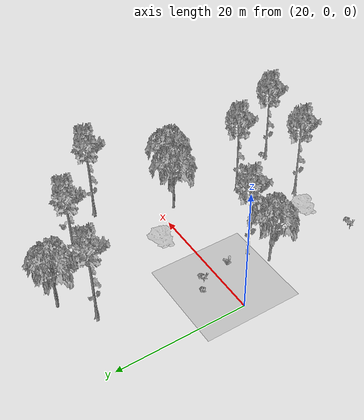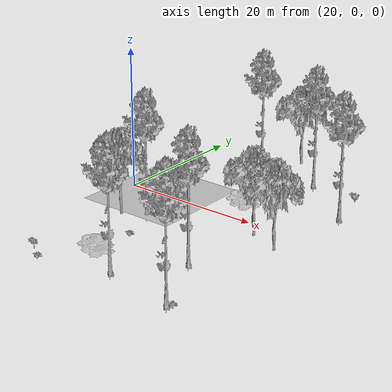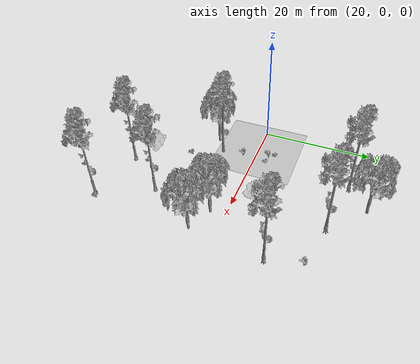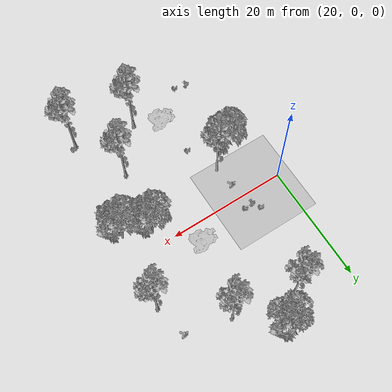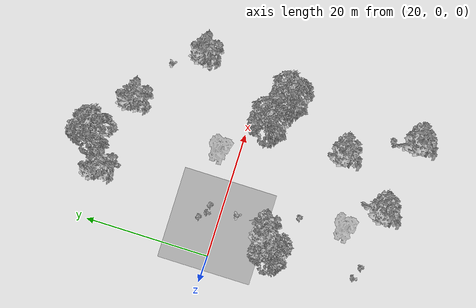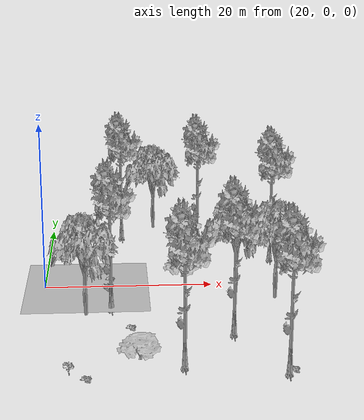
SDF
<sdf version="1.7">
 <world name="default">
  <model name="ground_plane">
   <static>1</static>
   <link name="link">
    <collision name="collision">
     <pose>25.0 0 0 0 -0 0</pose>
     <geometry><plane><normal>0 0 1</normal><size>50 50</size></plane></geometry>
     <surface><contact><ode><min_depth>0.01</min_depth><max_vel>0</max_vel></ode></contact></surface>
    </collision>
    <visual name="grass">
     <pose>25.0 0 0 0 -0 0</pose>
     <cast_shadows>0</cast_shadows>
     <geometry>
      <mesh>
       <scale>0.2731578947368421 0.2802702702702703 0.1</scale>
       <uri>file://grass_plane/meshes/grass_plane.dae</uri>
      </mesh>
     </geometry>
    </visual>
   </link>
  </model>
  <model name="Tree 1">
   <static>1</static>
   <pose>39.65902609880815 15.940667927767997 0 1.57079 -0 0</pose>
   <link name="link">
    <collision name="collision">
     <geometry><mesh><scale>3.5 5 3.5</scale><uri>model://tree_9/meshes/tree_9.obj</uri></mesh></geometry>
    </collision>
    <visual name="visual">
     <geometry><mesh><scale>3.5 5 3.5</scale><uri>model://tree_9/meshes/tree_9.obj</uri></mesh></geometry>
    </visual>
   </link>
  </model>
  <model name="Tree 3">
   <static>1</static>
   <pose>27.909026098808148 -6.281554294454235 0 1.57079 -0 0</pose>
   <link name="link">
    <collision name="collision">
     <geometry><mesh><scale>3.5 5 3.5</scale><uri>model://tree_9/meshes/tree_9.obj</uri></mesh></geometry>
    </collision>
    <visual name="visual">
     <geometry><mesh><scale>3.5 5 3.5</scale><uri>model://tree_9/meshes/tree_9.obj</uri></mesh></geometry>
    </visual>
   </link>
  </model>
  <model name="Tree 5">
   <static>1</static>
   <pose>45.53402609880815 -22.948220961120892 0 1.57079 -0 0</pose>
   <link name="link">
    <collision name="collision">
     <geometry><mesh><scale>3.5 5 3.5</scale><uri>model://tree_9/meshes/tree_9.obj</uri></mesh></geometry>
    </collision>
    <visual name="visual">
     <geometry><mesh><scale>3.5 5 3.5</scale><uri>model://tree_9/meshes/tree_9.obj</uri></mesh></geometry>
    </visual>
   </link>
  </model>
  <model name="Tree 7">
   <static>1</static>
   <pose>33.78402609880815 21.496223483323554 0 1.57079 -0 0</pose>
   <link name="link">
    <collision name="collision">
     <geometry><mesh><scale>3.5 5 3.5</scale><uri>model://tree_2/meshes/tree_2.obj</uri></mesh></geometry>
    </collision>
    <visual name="visual">
     <geometry><mesh><scale>3.5 5 3.5</scale><uri>model://tree_2/meshes/tree_2.obj</uri></mesh></geometry>
    </visual>
   </link>
  </model>
  <model name="Tree 9">
   <static>1</static>
   <pose>42.59652609880815 -2.5778505907505327 0 1.57079 -0 0</pose>
   <link name="link">
    <collision name="collision">
     <geometry><mesh><scale>3.5 5 3.5</scale><uri>model://tree_2/meshes/tree_2.obj</uri></mesh></geometry>
    </collision>
    <visual name="visual">
     <geometry><mesh><scale>3.5 5 3.5</scale><uri>model://tree_2/meshes/tree_2.obj</uri></mesh></geometry>
    </visual>
   </link>
  </model>
  <model name="Tree 11">
   <static>1</static>
   <pose>30.846526098808148 -19.24451725741719 0 1.57079 -0 0</pose>
   <link name="link">
    <collision name="collision">
     <geometry><mesh><scale>3 2 3</scale><uri>model://tree_3/meshes/tree_3.obj</uri></mesh></geometry>
    </collision>
    <visual name="visual">
     <geometry><mesh><scale>3 2 3</scale><uri>model://tree_3/meshes/tree_3.obj</uri></mesh></geometry>
    </visual>
   </link>
  </model>
  <model name="Tree 12">
   <static>1</static>
   <pose>24.971526098808148 -8.133406146306086 0 1.57079 -0 0</pose>
   <link name="link">
    <collision name="collision">
     <geometry><mesh><scale>3.5 5 3.5</scale><uri>model://tree_2/meshes/tree_2.obj</uri></mesh></geometry>
    </collision>
    <visual name="visual">
     <geometry><mesh><scale>3.5 5 3.5</scale><uri>model://tree_2/meshes/tree_2.obj</uri></mesh></geometry>
    </visual>
   </link>
  </model>
  <model name="Tree 13">
   <static>1</static>
   <pose>48.47152609880815 8.5332605203606 0 1.57079 -0 0</pose>
   <link name="link">
    <collision name="collision">
     <geometry><mesh><scale>3.5 5 3.5</scale><uri>model://tree_9/meshes/tree_9.obj</uri></mesh></geometry>
    </collision>
    <visual name="visual">
     <geometry><mesh><scale>3.5 5 3.5</scale><uri>model://tree_9/meshes/tree_9.obj</uri></mesh></geometry>
    </visual>
   </link>
  </model>
  <model name="Tree 15">
   <static>1</static>
   <pose>36.72152609880815 2.9777049648050458 0 1.57079 -0 0</pose>
   <link name="link">
    <collision name="collision">
     <geometry><mesh><scale>3 2 3</scale><uri>model://tree_3/meshes/tree_3.obj</uri></mesh></geometry>
    </collision>
    <visual name="visual">
     <geometry><mesh><scale>3 2 3</scale><uri>model://tree_3/meshes/tree_3.obj</uri></mesh></geometry>
    </visual>
   </link>
  </model>
  <model name="Tree 17">
   <static>1</static>
   <pose>41.12777609880815 -13.688961701861633 0 1.57079 -0 0</pose>
   <link name="link">
    <collision name="collision">
     <geometry><mesh><scale>3.5 5 3.5</scale><uri>model://tree_9/meshes/tree_9.obj</uri></mesh></geometry>
    </collision>
    <visual name="visual">
     <geometry><mesh><scale>3.5 5 3.5</scale><uri>model://tree_9/meshes/tree_9.obj</uri></mesh></geometry>
    </visual>
   </link>
  </model>
  <model name="Tree 19">
   <static>1</static>
   <pose>29.377776098808148 17.79251977961985 0 1.57079 -0 0</pose>
   <link name="link">
    <collision name="collision">
     <geometry><mesh><scale>3.5 5 3.5</scale><uri>model://tree_9/meshes/tree_9.obj</uri></mesh></geometry>
    </collision>
    <visual name="visual">
     <geometry><mesh><scale>3.5 5 3.5</scale><uri>model://tree_9/meshes/tree_9.obj</uri></mesh></geometry>
    </visual>
   </link>
  </model>
  <model name="Tree 21">
   <static>1</static>
   <pose>47.00277609880815 -4.429702442602384 0 1.57079 -0 0</pose>
   <link name="link">
    <collision name="collision">
     <geometry><mesh><scale>3.5 5 3.5</scale><uri>model://tree_2/meshes/tree_2.obj</uri></mesh></geometry>
    </collision>
    <visual name="visual">
     <geometry><mesh><scale>3.5 5 3.5</scale><uri>model://tree_2/meshes/tree_2.obj</uri></mesh></geometry>
    </visual>
   </link>
  </model>
  <model name="Tree 23">
   <static>1</static>
   <pose>35.25277609880815 -21.09636910926904 0 1.57079 -0 0</pose>
   <link name="link">
    <collision name="collision">
     <geometry><mesh><scale>3.5 5 3.5</scale><uri>model://tree_9/meshes/tree_9.obj</uri></mesh></geometry>
    </collision>
    <visual name="visual">
     <geometry><mesh><scale>3.5 5 3.5</scale><uri>model://tree_9/meshes/tree_9.obj</uri></mesh></geometry>
    </visual>
   </link>
  </model>
  <model name="Bush 2">
   <static>1</static>
   <pose>23.71911953105399 -22.516796391773486 0 1.57079 -0 0</pose>
   <link name="link">
    <collision name="collision">
     <geometry><mesh><scale>2 2 2</scale><uri>model://bush_5/meshes/bush_5.obj</uri></mesh></geometry>
     <surface><contact><collide_without_contact>false</collide_without_contact></contact></surface>
    </collision>
    <visual name="visual">
     <geometry><mesh><scale>2 2 2</scale><uri>model://bush_5/meshes/bush_5.obj</uri></mesh></geometry>
    </visual>
   </link>
  </model>
  <model name="Bush 4">
   <static>1</static>
   <pose>25.426783324719857 -23.626464159648798 0 1.57079 -0 0</pose>
   <link name="link">
    <collision name="collision">
     <geometry><mesh><scale>2 2 2</scale><uri>model://bush_2/meshes/bush_2.obj</uri></mesh></geometry>
     <surface><contact><collide_without_contact>false</collide_without_contact></contact></surface>
    </collision>
    <visual name="visual">
     <geometry><mesh><scale>2 2 2</scale><uri>model://bush_2/meshes/bush_2.obj</uri></mesh></geometry>
    </visual>
   </link>
  </model>
  <model name="Bush 7">
   <static>1</static>
   <pose>30.063654340032205 -12.043113768381442 0 1.57079 -0 0</pose>
   <link name="link">
    <collision name="collision">
     <geometry><mesh><scale>2 2 2</scale><uri>model://bush_2/meshes/bush_2.obj</uri></mesh></geometry>
     <surface><contact><collide_without_contact>false</collide_without_contact></contact></surface>
    </collision>
    <visual name="visual">
     <geometry><mesh><scale>2 2 2</scale><uri>model://bush_2/meshes/bush_2.obj</uri></mesh></geometry>
    </visual>
   </link>
  </model>
  <model name="Bush 8">
   <static>1</static>
   <pose>26.665233223576188 2.294415597358352 0 1.57079 -0 0</pose>
   <link name="link">
    <collision name="collision">
     <geometry><mesh><scale>2 2 2</scale><uri>model://bush_5/meshes/bush_5.obj</uri></mesh></geometry>
     <surface><contact><collide_without_contact>false</collide_without_contact></contact></surface>
    </collision>
    <visual name="visual">
     <geometry><mesh><scale>2 2 2</scale><uri>model://bush_5/meshes/bush_5.obj</uri></mesh></geometry>
    </visual>
   </link>
  </model>
  <model name="Bush 12">
   <static>1</static>
   <pose>27.80511181934605 2.015184433338124 0 1.57079 -0 0</pose>
   <link name="link">
    <collision name="collision">
     <geometry><mesh><scale>2 2 2</scale><uri>model://bush_2/meshes/bush_2.obj</uri></mesh></geometry>
     <surface><contact><collide_without_contact>false</collide_without_contact></contact></surface>
    </collision>
    <visual name="visual">
     <geometry><mesh><scale>2 2 2</scale><uri>model://bush_2/meshes/bush_2.obj</uri></mesh></geometry>
    </visual>
   </link>
  </model>
  <model name="Bush 13">
   <static>1</static>
   <pose>46.10631322636351 -22.605214977137006 0 1.57079 -0 0</pose>
   <link name="link">
    <collision name="collision">
     <geometry><mesh><scale>2 2 2</scale><uri>model://bush_2/meshes/bush_2.obj</uri></mesh></geometry>
     <surface><contact><collide_without_contact>false</collide_without_contact></contact></surface>
    </collision>
    <visual name="visual">
     <geometry><mesh><scale>2 2 2</scale><uri>model://bush_2/meshes/bush_2.obj</uri></mesh></geometry>
    </visual>
   </link>
  </model>
  <model name="Bush 14">
   <static>1</static>
   <pose>27.674476811325665 -2.4007095045025295 0 1.57079 -0 0</pose>
   <link name="link">
    <collision name="collision">
     <geometry><mesh><scale>2 2 2</scale><uri>model://bush_0/meshes/bush_0.obj</uri></mesh></geometry>
     <surface><contact><collide_without_contact>false</collide_without_contact></contact></surface>
    </collision>
    <visual name="visual">
     <geometry><mesh><scale>2 2 2</scale><uri>model://bush_0/meshes/bush_0.obj</uri></mesh></geometry>
    </visual>
   </link>
  </model>
  <model name="Bush 16">
   <static>1</static>
   <pose>47.34703535256812 14.320576370464686 0 1.57079 -0 0</pose>
   <link name="link">
    <collision name="collision">
     <geometry><mesh><scale>2 2 2</scale><uri>model://bush_0/meshes/bush_0.obj</uri></mesh></geometry>
     <surface><contact><collide_without_contact>false</collide_without_contact></contact></surface>
    </collision>
    <visual name="visual">
     <geometry><mesh><scale>2 2 2</scale><uri>model://bush_0/meshes/bush_0.obj</uri></mesh></geometry>
    </visual>
   </link>
  </model>
  <model name="Bush 17">
   <static>1</static>
   <pose>25.507190962798308 3.2227335764246483 0 1.57079 -0 0</pose>
   <link name="link">
    <collision name="collision">
     <geometry><mesh><scale>2 2 2</scale><uri>model://bush_2/meshes/bush_2.obj</uri></mesh></geometry>
     <surface><contact><collide_without_contact>false</collide_without_contact></contact></surface>
    </collision>
    <visual name="visual">
     <geometry><mesh><scale>2 2 2</scale><uri>model://bush_2/meshes/bush_2.obj</uri></mesh></geometry>
    </visual>
   </link>
  </model>
 </world>
</sdf>
